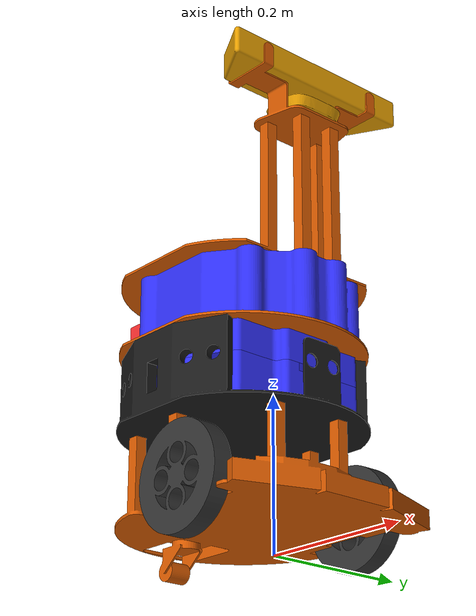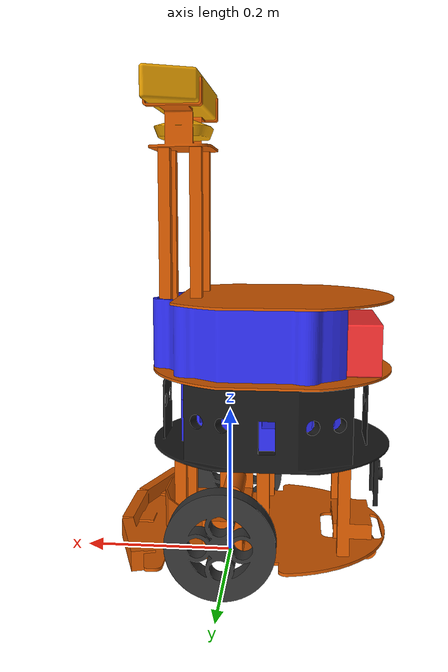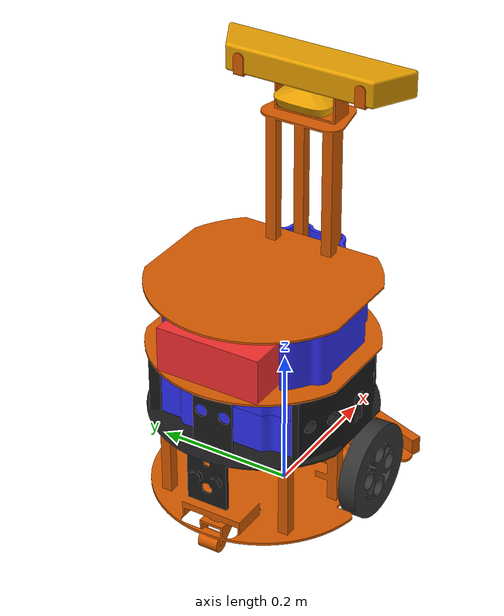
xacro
<?xml version="1.0"?>
<robot name="veggiebot" xmlns:xacro="http://ros.org/wiki/xacro">
  <xacro:include filename="$(find veggie_urdf)/urdf/common_properties.xacro"/>

  <link name="base_footprint"/>

  <joint name="base_joint" type="fixed">
    <parent link="base_footprint"/>
    <child link="base_link"/>
    <origin xyz="0 0 0.0375" rpy="0 0 0"/>
  </joint>

  <link name="base_link">
   <inertial>
      <mass value="1" />
      <origin xyz="0 0 0" />
      <inertia ixx="1.0" ixy="0.0" ixz="0.0"
        iyy="1.0" iyz="0.0" izz="1.0" />
   </inertial>
    <visual>
      <origin xyz="0 0 0.0" rpy="0 0 0"/>
      <geometry>
        <mesh filename="package://veggie_urdf/meshes/Visuals/base_link.stl"/>
      </geometry>
        <material name="orange"/>
    </visual>
   <collision>
      <origin xyz="0 0 0.0" rpy="0 0 0"/>
      <geometry>
        <mesh filename="package://veggie_urdf/meshes/Collisions/base_link.stl"/>
      </geometry>
    </collision>

  </link>

  <link name="second_link">
    <inertial>
      <mass value="0.1" />
      <origin xyz="0 0 0" />
      <inertia ixx="1.0" ixy="0.0" ixz="0.0"
        iyy="1.0" iyz="0.0" izz="1.0" />
   </inertial>
    <visual>
      <origin xyz="0 0 0.0" rpy="0 0 0"/>
      <geometry>
        <mesh filename="package://veggie_urdf/meshes/Visuals/second_level.stl"/>
      </geometry>
        <material name="black"/>
    </visual>
  <collision>
      <origin xyz="0 0 0.0" rpy="0 0 0"/>
      <geometry>
        <mesh filename="package://veggie_urdf/meshes/Collisions/second_level.stl"/>
      </geometry>
    </collision>
  </link>

  <joint name="fixed_joint_1" type="fixed">
    <parent link="base_link"/>
    <child link="second_link"/>
    <origin xyz="0 0 0" rpy="0 0 0"/>
   </joint>

  <link name="third_link">
    <inertial>
      <mass value="0.1" />
      <origin xyz="0 0 0" />
      <inertia ixx="1.0" ixy="0.0" ixz="0.0"
        iyy="1.0" iyz="0.0" izz="1.0" />
    </inertial>
    <visual>
      <origin xyz="0 0 0.0" rpy="0 0 0"/>
      <geometry>
        <mesh filename="package://veggie_urdf/meshes/Visuals/second_level_2.stl"/>
      </geometry>
        <material name="blue"/>
    </visual>
    <collision>
      <origin xyz="0 0 0.0" rpy="0 0 0"/>
      <geometry>
        <mesh filename="package://veggie_urdf/meshes/Collisions/second_level_2.stl"/>
      </geometry>
    </collision>
  </link>

  <joint name="fixed_joint_2" type="fixed">
    <parent link="second_link"/>
    <child link="third_link"/>
    <origin xyz="0 0 0" rpy="0 0 0"/>
   </joint>

  <link name="fourth_link">
    <inertial>
      <mass value="0.1" />
      <origin xyz="0 0 0" />
      <inertia ixx="1.0" ixy="0.0" ixz="0.0"
        iyy="1.0" iyz="0.0" izz="1.0" />
    </inertial>
    <visual>
      <origin xyz="0 0 0.0" rpy="0 0 0"/>
      <geometry>
        <mesh filename="package://veggie_urdf/meshes/Visuals/second_level_3.stl"/>
      </geometry>
        <material name="blue"/>
    </visual>
    <collision>
      <origin xyz="0 0 0.0" rpy="0 0 0"/>
      <geometry>
        <mesh filename="package://veggie_urdf/meshes/Collisions/second_level_3.stl"/>
      </geometry>
    </collision>
  </link>

  <joint name="fixed_joint_3" type="fixed">
    <parent link="third_link"/>
    <child link="fourth_link"/>
    <origin xyz="0 0 0" rpy="0 0 0"/>
   </joint>

  <link name="fifth_link">
      <inertial>
      <mass value="0.1" />
      <origin xyz="0 0 0" />
      <inertia ixx="1.0" ixy="0.0" ixz="0.0"
        iyy="1.0" iyz="0.0" izz="1.0" />
     </inertial>
      <visual>
      <origin xyz="0 0 0.0" rpy="0 0 0"/>
      <geometry>
        <mesh filename="package://veggie_urdf/meshes/Visuals/third_level_2.stl"/>
      </geometry>
        <material name="blue"/>
    </visual>
    <collision>
      <origin xyz="0 0 0.0" rpy="0 0 0"/>
      <geometry>
        <mesh filename="package://veggie_urdf/meshes/Collisions/third_level_2.stl"/>
      </geometry>
    </collision>
  </link>

 <joint name="fixed_joint_4" type="fixed">
    <parent link="fourth_link"/>
    <child link="fifth_link"/>
    <origin xyz="0 0 0" rpy="0 0 0"/>
   </joint>

 <link name="sixth_link">
    <inertial>
      <mass value="0.1" />
      <origin xyz="0 0 0" />
      <inertia ixx="1.0" ixy="0.0" ixz="0.0"
        iyy="1.0" iyz="0.0" izz="1.0" />
   </inertial>
    <visual>
      <origin xyz="0 0 0.0" rpy="0 0 0"/>
      <geometry>
        <mesh filename="package://veggie_urdf/meshes/Visuals/third_level.stl"/>
      </geometry>
        <material name="orange"/>
    </visual>
    <collision>
      <origin xyz="0 0 0.0" rpy="0 0 0"/>
      <geometry>
        <mesh filename="package://veggie_urdf/meshes/Collisions/third_level.stl"/>
      </geometry>
    </collision>
  </link>

 <joint name="fixed_joint_5" type="fixed">
    <parent link="fifth_link"/>
    <child link="sixth_link"/>
    <origin xyz="0 0 0" rpy="0 0 0"/>
   </joint>

<link name="battery">
    <inertial>
      <mass value="1" />
      <origin xyz="0 0 0.3" />
      <inertia ixx="1.0" ixy="0.0" ixz="0.0"
        iyy="1.0" iyz="0.0" izz="1.0" />
   </inertial>
    <visual>
      <origin xyz="0 0 0.0" rpy="0 0 0"/>
      <geometry>
        <mesh filename="package://veggie_urdf/meshes/Visuals/battery.stl"/>
      </geometry>
        <material name="red"/>
    </visual>
    <collision>
      <origin xyz="0 0 0.0" rpy="0 0 0"/>
      <geometry>
        <mesh filename="package://veggie_urdf/meshes/Collisions/battery.stl"/>
      </geometry>
    </collision>
  </link>

 <joint name="fixed_joint_6" type="fixed">
    <parent link="sixth_link"/>
    <child link="battery"/>
    <origin xyz="0 0 0" rpy="0 0 0"/>
   </joint>

  <link name="kinect">
  <inertial>
      <mass value="0.1" />
      <origin xyz="0 0 0.5" />
      <inertia ixx="1.0" ixy="0.0" ixz="0.0"
        iyy="1.0" iyz="0.0" izz="1.0" />
   </inertial>
  <visual>
   <origin rpy="0 0 0" xyz="0 0 0"/>
    <geometry>
      <mesh filename="package://veggie_urdf/meshes/Visuals/kinect.dae"/>
    </geometry>
  </visual>
  <collision>
      <origin xyz="0 0 0.0" rpy="0 0 0"/>
      <geometry>
        <mesh filename="package://veggie_urdf/meshes/Collisions/kinect.stl"/>
      </geometry>
    </collision>
  </link>

<joint name="fixed_joint_kinect" type="fixed">
    <parent link="base_link"/>
    <child link="kinect"/>
    <origin xyz="0.05995 0 0.555" rpy="0 0 1.57"/>
   </joint>

  <joint name="imu_joint" type="fixed">
    <parent link="base_link"/>
    <child link="imu_link"/>
    <origin xyz="-0.025 0.04 0.1725" rpy="0 0 3.14"/>
  </joint>

  <link name="imu_link"/>

   <joint name="wheel_left_joint" type="continuous">
    <parent link="base_link"/>
    <child link="wheel_left"/>
    <origin xyz="0.0 0.114 0.03" rpy="0 0 0"/>
    <axis xyz="0 1 0"/>
  </joint>

  <link name="wheel_left">
    <inertial>
      <mass value="0.1" />
      <origin xyz="0 0 0" />
      <inertia ixx="1.0" ixy="0.0" ixz="0.0"
        iyy="1.0" iyz="0.0" izz="1.0" />
   </inertial>
    <visual>
      <origin xyz="0 0 0" rpy="-1.57 0 0"/>
      <geometry>
        <mesh filename="package://veggie_urdf/meshes/Visuals/wheel_left.stl"/>
      </geometry>
       <material name="grey"/>
    </visual>
  <collision>
      <origin xyz="0 0 0.0" rpy="-1.57 0 0"/>
      <geometry>
        <mesh filename="package://veggie_urdf/meshes/Collisions/wheel_left.stl"/>
      </geometry>
    </collision>
  </link>

  <joint name="wheel_right_joint" type="continuous">
    <parent link="base_link"/>
    <child link="wheel_right"/>
    <origin xyz="0.0 -0.114 0.03" rpy="0 0 0"/>
    <axis xyz="0 1 0"/>
  </joint>

  <link name="wheel_right">
   <inertial>
      <mass value="0.1" />
      <origin xyz="0 0 0" />
      <inertia ixx="1.0" ixy="0.0" ixz="0.0"
        iyy="1.0" iyz="0.0" izz="1.0" />
   </inertial>
   <visual>
      <origin xyz="0 0 0" rpy="1.57 0 0"/>
      <geometry>
        <mesh filename="package://veggie_urdf/meshes/Visuals/wheel_right.stl"/>
      </geometry>
      <material name="grey"/>
    </visual>
    <collision>
      <origin xyz="0 0 0.0" rpy="1.57 0 0"/>
      <geometry>
        <mesh filename="package://veggie_urdf/meshes/Collisions/wheel_right.stl"/>
      </geometry>
    </collision>
  </link>

</robot>

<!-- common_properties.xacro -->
<robot name="xacro_properties" xmlns:xacro="http://ros.org/wiki/xacro">
  <xacro:property name="M_PI" value="3.1415926535897931" />

  <!-- Init colour -->
  <material name="orange">
      <color rgba="0.84 0.35 0 1"/>
  </material>

  <material name="black">
      <color rgba="0.1 0.1 0.1 1"/>
  </material>

  <material name="blue">
      <color rgba="0.18 0.18 0.95 1"/>
  </material>

  <material name="red">
      <color rgba="0.95 0.18 0.18 1"/>
  </material>

   <material name="grey">
      <color rgba="0.2 0.2 0.2 1"/>
   </material>
</robot>
